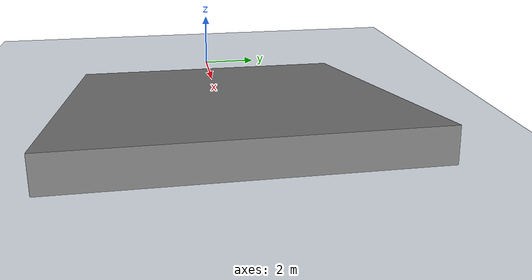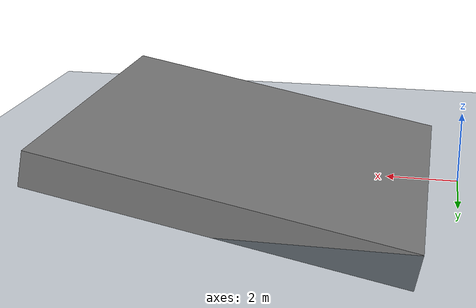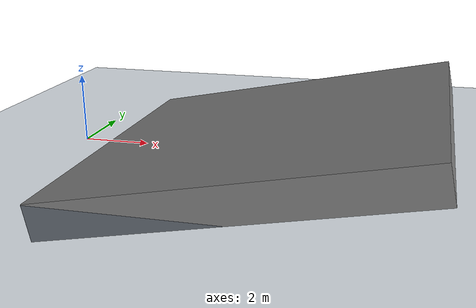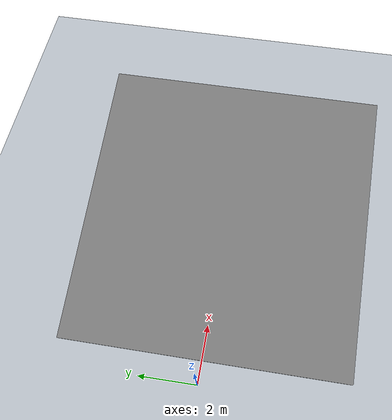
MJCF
<mujoco model="slope_2">
  <!-- Terrain Type: slope, Level: 2, Slope angle (degrees): 10.9790 -->
  <statistic center="0 0 0.1" extent="0.8" />
  <visual>
    <headlight diffuse="0.6 0.6 0.6" ambient="0.3 0.3 0.3" specular="0 0 0" />
    <rgba haze="0.15 0.25 0.35 1" />
    <global azimuth="-130" elevation="-20" />
  </visual>
  <asset>
    <texture type="skybox" builtin="gradient" rgb1="0.3 0.5 0.7" rgb2="0 0 0" width="512" height="3072" />
    <texture type="2d" name="groundplane" builtin="checker" mark="edge" rgb1="0.2 0.3 0.4" rgb2="0.1 0.2 0.3" markrgb="0.8 0.8 0.8" width="300" height="300" />
    <material name="groundplane" texture="groundplane" texuniform="true" texrepeat="5 5" reflectance="0.0" />
  </asset>
  <worldbody>
    <light pos="0 0 1.5" dir="0 0 -1" directional="true" />
    <geom name="floor" size="0 0 0.05" type="plane" material="groundplane" />
    <geom pos="5.895224613549555 0.0 0.47915147654868323" type="box" size="5.093220984799305 5.0 0.5" quat="0.9954137448575425 0.0 -0.09566335008080826 0.0" />
  </worldbody>
</mujoco>
